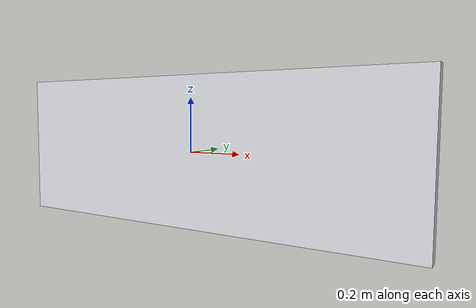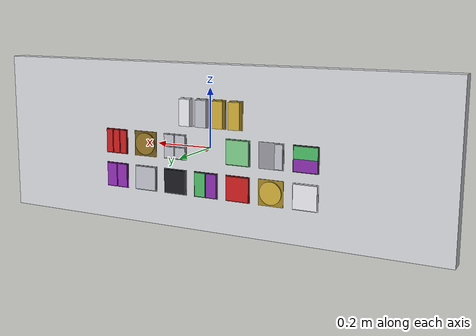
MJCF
<?xml version='1.0' encoding='utf-8'?>
<mujoco model="w3_b1_panel_base">
  <asset>
    <material name="Switch_Quantity1_36_bezel" rgba="0.85 0.85 0.88 1" specular="0.85" shininess="0.9" />
    <material name="Switch_Quantity1_36_button" rgba="0.95 0.95 0.97 1" specular="0.85" shininess="0.9" />
    <material name="Switch_Quantity1_37_bezel" rgba="0.60 0.60 0.63 1" specular="0.9" shininess="0.95" />
    <material name="Switch_Quantity1_37_button" rgba="0.78 0.78 0.82 1" specular="0.9" shininess="0.95" />
    <material name="Switch_Quantity1_38_bezel" rgba="0.65 0.53 0.15 1" specular="0.9" shininess="0.95" />
    <material name="Switch_Quantity1_38_button" rgba="0.83 0.69 0.22 1" specular="0.9" shininess="0.95" />
    <material name="Switch_Quantity1_39_bezel" rgba="0.65 0.53 0.15 1" specular="0.9" shininess="0.95" />
    <material name="Switch_Quantity1_39_button" rgba="0.83 0.69 0.22 1" specular="0.9" shininess="0.95" />
    <material name="Switch_Quantity3_04_bezel" rgba="0.55 0.08 0.08 1" specular="0.8" shininess="0.85" />
    <material name="Switch_Quantity3_04_btn1" rgba="0.82 0.12 0.12 1" specular="0.8" shininess="0.85" />
    <material name="Switch_Quantity3_04_btn2" rgba="0.82 0.12 0.12 1" specular="0.8" shininess="0.85" />
    <material name="Switch_Quantity3_04_btn3" rgba="0.82 0.12 0.12 1" specular="0.8" shininess="0.85" />
    <material name="Switch_Quantity3_05_bezel" rgba="0.45 0.35 0.10 1" specular="0.8" shininess="0.9" />
    <material name="Switch_Quantity3_05_button" rgba="0.60 0.47 0.15 1" specular="0.8" shininess="0.9" />
    <material name="Switch_Quantity2_03_bezel" rgba="0.60 0.60 0.63 1" specular="0.9" shininess="0.95" />
    <material name="Switch_Quantity2_03_btn1" rgba="0.78 0.78 0.82 1" specular="0.9" shininess="0.95" />
    <material name="Switch_Quantity2_03_btn2" rgba="0.78 0.78 0.82 1" specular="0.9" shininess="0.95" />
    <material name="Switch_Quantity2_03_btn3" rgba="0.78 0.78 0.82 1" specular="0.9" shininess="0.95" />
    <material name="Switch_Quantity2_03_btn4" rgba="0.78 0.78 0.82 1" specular="0.9" shininess="0.95" />
    <material name="Switch_Quantity1_40_bezel" rgba="0.30 0.60 0.35 1" specular="0.8" shininess="0.85" />
    <material name="Switch_Quantity1_40_button" rgba="0.50 0.82 0.55 1" specular="0.8" shininess="0.85" />
    <material name="Switch_Quantity1_41_bezel" rgba="0.60 0.60 0.63 1" specular="0.9" shininess="0.95" />
    <material name="Switch_Quantity1_41_button" rgba="0.78 0.78 0.82 1" specular="0.9" shininess="0.95" />
    <material name="Switch_Quantity1_42_bezel" rgba="0.20 0.20 0.22 1" specular="0.8" shininess="0.85" />
    <material name="Switch_Quantity1_42_green" rgba="0.30 0.75 0.40 1" specular="0.8" shininess="0.85" />
    <material name="Switch_Quantity1_42_purple" rgba="0.55 0.18 0.70 1" specular="0.8" shininess="0.85" />
    <material name="Switch_Quantity2_04_bezel" rgba="0.40 0.10 0.50 1" specular="0.8" shininess="0.85" />
    <material name="Switch_Quantity2_04_btn1" rgba="0.58 0.18 0.72 1" specular="0.8" shininess="0.85" />
    <material name="Switch_Quantity2_04_btn2" rgba="0.58 0.18 0.72 1" specular="0.8" shininess="0.85" />
    <material name="Switch_Quantity2_05_bezel" rgba="0.60 0.60 0.63 1" specular="0.9" shininess="0.95" />
    <material name="Switch_Quantity2_05_button" rgba="0.78 0.78 0.82 1" specular="0.9" shininess="0.95" />
    <material name="Toogle_Quantity4_01_bezel" rgba="0.05 0.05 0.07 1" specular="0.7" shininess="0.8" />
    <material name="Toogle_Quantity4_01_button" rgba="0.10 0.10 0.13 1" specular="0.7" shininess="0.8" />
    <material name="Switch_Quantity2_06_bezel" rgba="0.20 0.20 0.22 1" specular="0.8" shininess="0.85" />
    <material name="Switch_Quantity2_06_btn1" rgba="0.55 0.18 0.70 1" specular="0.8" shininess="0.85" />
    <material name="Switch_Quantity2_06_btn2" rgba="0.30 0.75 0.40 1" specular="0.8" shininess="0.85" />
    <material name="Switch_Quantity1_43_bezel" rgba="0.55 0.08 0.08 1" specular="0.8" shininess="0.85" />
    <material name="Switch_Quantity1_43_button" rgba="0.82 0.12 0.12 1" specular="0.8" shininess="0.85" />
    <material name="Switch_Quantity1_44_bezel" rgba="0.65 0.53 0.15 1" specular="0.9" shininess="0.95" />
    <material name="Switch_Quantity1_44_button" rgba="0.83 0.69 0.22 1" specular="0.9" shininess="0.95" />
    <material name="Toogle_Quantity1_04_bezel" rgba="0.85 0.85 0.88 1" specular="0.85" shininess="0.9" />
    <material name="Toogle_Quantity1_04_button" rgba="0.95 0.95 0.97 1" specular="0.85" shininess="0.9" />
  </asset>
  <worldbody>
    <body name="panel_mount" pos="0 0 0">
      <geom name="panel_backplate" type="box" pos="0 0 0" size="0.81 0.025 0.28" rgba="0.86 0.87 0.89 1" contype="1" conaffinity="1" />
      <site name="panel_origin" pos="0 0.025 0" size="0.006" rgba="1 0 0 1" />
      <body name="panel_slot_r1_c6" pos="0.0698 0.03 0.12" quat="0.7071068 -0.7071068 0 0">
        <body name="Switch_Quantity1_36_r1_c6">
          <geom name="Switch_Quantity1_36_bezel__panel_slot_r1_c6" type="box" pos="0 0 0.001" size="0.023 0.0475 0.001" material="Switch_Quantity1_36_bezel" />
          <geom name="Switch_Quantity1_36_button__panel_slot_r1_c6" type="box" pos="0 0 0.011" size="0.02 0.0445 0.011" material="Switch_Quantity1_36_button" />
        </body>
      </body>
      <body name="panel_slot_r1_c7" pos="0.009800000000000001 0.03 0.12" quat="0.7071068 -0.7071068 0 0">
        <body name="Switch_Quantity1_37_r1_c7">
          <geom name="Switch_Quantity1_37_bezel__panel_slot_r1_c7" type="box" pos="0 0 0.001" size="0.023 0.0475 0.001" material="Switch_Quantity1_37_bezel" />
          <geom name="Switch_Quantity1_37_button__panel_slot_r1_c7" type="box" pos="0 0 0.011" size="0.02 0.0445 0.011" material="Switch_Quantity1_37_button" />
        </body>
      </body>
      <body name="panel_slot_r1_c8" pos="-0.0502 0.03 0.12" quat="0.7071068 -0.7071068 0 0">
        <body name="Switch_Quantity1_38_r1_c8">
          <geom name="Switch_Quantity1_38_bezel__panel_slot_r1_c8" type="box" pos="0 0 0.001" size="0.023 0.0475 0.001" material="Switch_Quantity1_38_bezel" />
          <geom name="Switch_Quantity1_38_button__panel_slot_r1_c8" type="box" pos="0 0 0.011" size="0.02 0.0445 0.011" material="Switch_Quantity1_38_button" />
        </body>
      </body>
      <body name="panel_slot_r1_c9" pos="-0.1102 0.03 0.12" quat="0.7071068 -0.7071068 0 0">
        <body name="Switch_Quantity1_39_r1_c9">
          <geom name="Switch_Quantity1_39_bezel__panel_slot_r1_c9" type="box" pos="0 0 0.001" size="0.023 0.0475 0.001" material="Switch_Quantity1_39_bezel" />
          <geom name="Switch_Quantity1_39_button__panel_slot_r1_c9" type="box" pos="0 0 0.011" size="0.02 0.0445 0.011" material="Switch_Quantity1_39_button" />
        </body>
      </body>
      <body name="panel_slot_r2_c1" pos="0.3498 0.03 0.0" quat="0.7071068 -0.7071068 0 0">
        <body name="Switch_Quantity3_04_r2_c1">
          <geom name="Switch_Quantity3_04_bezel__panel_slot_r2_c1" type="box" pos="0 0 0.001" size="0.043 0.043 0.001" material="Switch_Quantity3_04_bezel" />
          <geom name="Switch_Quantity3_04_btn1__panel_slot_r2_c1" type="box" pos="-0.028 0 0.0035" size="0.012 0.04 0.0035" material="Switch_Quantity3_04_btn1" />
          <geom name="Switch_Quantity3_04_btn2__panel_slot_r2_c1" type="box" pos="0 0 0.0035" size="0.012 0.04 0.0035" material="Switch_Quantity3_04_btn2" />
          <geom name="Switch_Quantity3_04_btn3__panel_slot_r2_c1" type="box" pos="0.028 0 0.0035" size="0.012 0.04 0.0035" material="Switch_Quantity3_04_btn3" />
        </body>
      </body>
      <body name="panel_slot_r2_c2" pos="0.2332 0.03 0.0" quat="0.7071068 -0.7071068 0 0">
        <body name="Switch_Quantity3_05_r2_c2">
          <geom name="Switch_Quantity3_05_bezel__panel_slot_r2_c2" type="box" pos="0 0 0.001" size="0.043 0.043 0.001" material="Switch_Quantity3_05_bezel" />
          <geom name="Switch_Quantity3_05_button__panel_slot_r2_c2" type="cylinder" pos="0 0 0.0035" size="0.038 0.0035" material="Switch_Quantity3_05_button" />
        </body>
      </body>
      <body name="panel_slot_r2_c3" pos="0.1166 0.03 0.0" quat="0.7071068 -0.7071068 0 0">
        <body name="Switch_Quantity2_03_r2_c3">
          <geom name="Switch_Quantity2_03_bezel__panel_slot_r2_c3" type="box" pos="0 0 0.001" size="0.043 0.043 0.001" material="Switch_Quantity2_03_bezel" />
          <geom name="Switch_Quantity2_03_btn1__panel_slot_r2_c3" type="box" pos="-0.021 0.021 0.0035" size="0.019 0.019 0.0035" material="Switch_Quantity2_03_btn1" />
          <geom name="Switch_Quantity2_03_btn2__panel_slot_r2_c3" type="box" pos="0.021 0.021 0.0035" size="0.019 0.019 0.0035" material="Switch_Quantity2_03_btn2" />
          <geom name="Switch_Quantity2_03_btn3__panel_slot_r2_c3" type="box" pos="-0.021 -0.021 0.0035" size="0.019 0.019 0.0035" material="Switch_Quantity2_03_btn3" />
          <geom name="Switch_Quantity2_03_btn4__panel_slot_r2_c3" type="box" pos="0.021 -0.021 0.0035" size="0.019 0.019 0.0035" material="Switch_Quantity2_03_btn4" />
        </body>
      </body>
      <body name="panel_slot_r2_c5" pos="-0.1166 0.03 0.0" quat="0.7071068 -0.7071068 0 0">
        <body name="Switch_Quantity1_40_r2_c5">
          <geom name="Switch_Quantity1_40_bezel__panel_slot_r2_c5" type="box" pos="0 0 0.001" size="0.043 0.043 0.001" material="Switch_Quantity1_40_bezel" />
          <geom name="Switch_Quantity1_40_button__panel_slot_r2_c5" type="box" pos="0 0 0.0035" size="0.04 0.04 0.0035" material="Switch_Quantity1_40_button" />
        </body>
      </body>
      <body name="panel_slot_r2_c6" pos="-0.2332 0.03 0.0" quat="0.7071068 -0.7071068 0 0">
        <body name="Switch_Quantity1_41_r2_c6">
          <geom name="Switch_Quantity1_41_bezel__panel_slot_r2_c6" type="box" pos="0 0 0.001" size="0.043 0.043 0.001" material="Switch_Quantity1_41_bezel" />
          <geom name="Switch_Quantity1_41_button__panel_slot_r2_c6" type="box" pos="-0.02667 0 0.0035" size="0.01333 0.04 0.0035" material="Switch_Quantity1_41_button" />
        </body>
      </body>
      <body name="panel_slot_r2_c7" pos="-0.3498 0.03 0.0" quat="0.7071068 -0.7071068 0 0">
        <body name="Switch_Quantity1_42_r2_c7">
          <geom name="Switch_Quantity1_42_bezel__panel_slot_r2_c7" type="box" pos="0 0 0.001" size="0.043 0.043 0.001" material="Switch_Quantity1_42_bezel" />
          <geom name="Switch_Quantity1_42_purple__panel_slot_r2_c7" type="box" pos="0 0.02 0.0035" size="0.04 0.02 0.0035" material="Switch_Quantity1_42_purple" />
          <geom name="Switch_Quantity1_42_green__panel_slot_r2_c7" type="box" pos="0 -0.02 0.0035" size="0.04 0.02 0.0035" material="Switch_Quantity1_42_green" />
        </body>
      </body>
      <body name="panel_slot_r3_c1" pos="0.3498 0.03 -0.12" quat="0.7071068 -0.7071068 0 0">
        <body name="Switch_Quantity2_04_r3_c1">
          <geom name="Switch_Quantity2_04_bezel__panel_slot_r3_c1" type="box" pos="0 0 0.001" size="0.043 0.043 0.001" material="Switch_Quantity2_04_bezel" />
          <geom name="Switch_Quantity2_04_btn1__panel_slot_r3_c1" type="box" pos="-0.021 0 0.0035" size="0.019 0.04 0.0035" material="Switch_Quantity2_04_btn1" />
          <geom name="Switch_Quantity2_04_btn2__panel_slot_r3_c1" type="box" pos="0.021 0 0.0035" size="0.019 0.04 0.0035" material="Switch_Quantity2_04_btn2" />
        </body>
      </body>
      <body name="panel_slot_r3_c2" pos="0.2332 0.03 -0.12" quat="0.7071068 -0.7071068 0 0">
        <body name="Switch_Quantity2_05_r3_c2">
          <geom name="Switch_Quantity2_05_bezel__panel_slot_r3_c2" type="box" pos="0 0 0.001" size="0.043 0.043 0.001" material="Switch_Quantity2_05_bezel" />
          <geom name="Switch_Quantity2_05_button__panel_slot_r3_c2" type="box" pos="0 0 0.0035" size="0.04 0.04 0.0035" material="Switch_Quantity2_05_button" />
        </body>
      </body>
      <body name="panel_slot_r3_c3" pos="0.1166 0.03 -0.12" quat="0.7071068 -0.7071068 0 0">
        <body name="Toogle_Quantity4_01_r3_c3">
          <geom name="Toogle_Quantity4_01_bezel__panel_slot_r3_c3" type="box" pos="0 0 0.001" size="0.043 0.043 0.001" material="Toogle_Quantity4_01_bezel" />
          <geom name="Toogle_Quantity4_01_button__panel_slot_r3_c3" type="box" pos="0 0 0.0035" size="0.04 0.04 0.0035" material="Toogle_Quantity4_01_button" />
        </body>
      </body>
      <body name="panel_slot_r3_c4" pos="0.0 0.03 -0.12" quat="0.7071068 -0.7071068 0 0">
        <body name="Switch_Quantity2_06_r3_c4">
          <geom name="Switch_Quantity2_06_bezel__panel_slot_r3_c4" type="box" pos="0 0 0.001" size="0.043 0.043 0.001" material="Switch_Quantity2_06_bezel" />
          <geom name="Switch_Quantity2_06_btn1__panel_slot_r3_c4" type="box" pos="-0.021 0 0.0035" size="0.019 0.04 0.0035" material="Switch_Quantity2_06_btn1" />
          <geom name="Switch_Quantity2_06_btn2__panel_slot_r3_c4" type="box" pos="0.021 0 0.0035" size="0.019 0.04 0.0035" material="Switch_Quantity2_06_btn2" />
        </body>
      </body>
      <body name="panel_slot_r3_c5" pos="-0.1166 0.03 -0.12" quat="0.7071068 -0.7071068 0 0">
        <body name="Switch_Quantity1_43_r3_c5">
          <geom name="Switch_Quantity1_43_bezel__panel_slot_r3_c5" type="box" pos="0 0 0.001" size="0.043 0.043 0.001" material="Switch_Quantity1_43_bezel" />
          <geom name="Switch_Quantity1_43_button__panel_slot_r3_c5" type="box" pos="0 0 0.0035" size="0.04 0.04 0.0035" material="Switch_Quantity1_43_button" />
        </body>
      </body>
      <body name="panel_slot_r3_c6" pos="-0.2332 0.03 -0.12" quat="0.7071068 -0.7071068 0 0">
        <body name="Switch_Quantity1_44_r3_c6">
          <geom name="Switch_Quantity1_44_bezel__panel_slot_r3_c6" type="box" pos="0 0 0.001" size="0.043 0.043 0.001" material="Switch_Quantity1_44_bezel" />
          <geom name="Switch_Quantity1_44_button__panel_slot_r3_c6" type="cylinder" pos="0 0 0.0035" size="0.038 0.0035" material="Switch_Quantity1_44_button" />
        </body>
      </body>
      <body name="panel_slot_r3_c7" pos="-0.3498 0.03 -0.12" quat="0.7071068 -0.7071068 0 0">
        <body name="Toogle_Quantity1_04_r3_c7">
          <geom name="Toogle_Quantity1_04_bezel__panel_slot_r3_c7" type="box" pos="0 0 0.001" size="0.043 0.043 0.001" material="Toogle_Quantity1_04_bezel" />
          <geom name="Toogle_Quantity1_04_button__panel_slot_r3_c7" type="box" pos="0 0 0.0035" size="0.04 0.04 0.0035" material="Toogle_Quantity1_04_button" />
        </body>
      </body>
    </body>
  </worldbody>
</mujoco>
